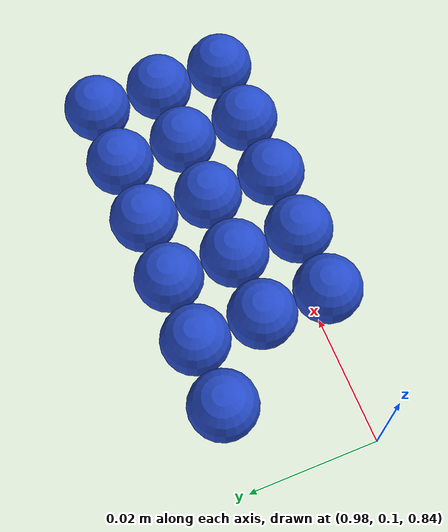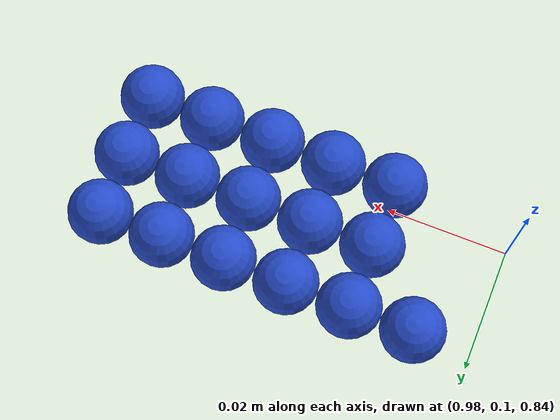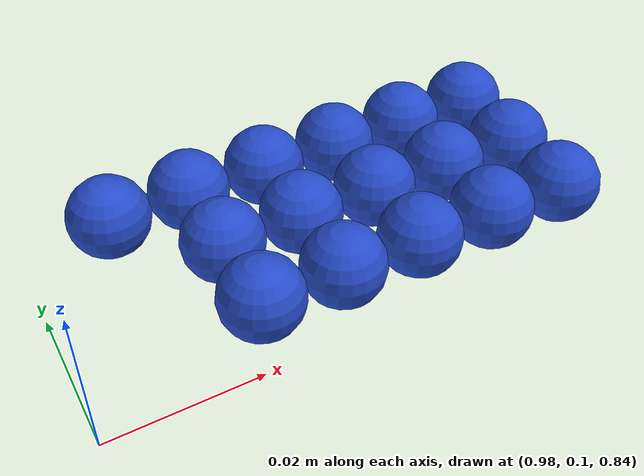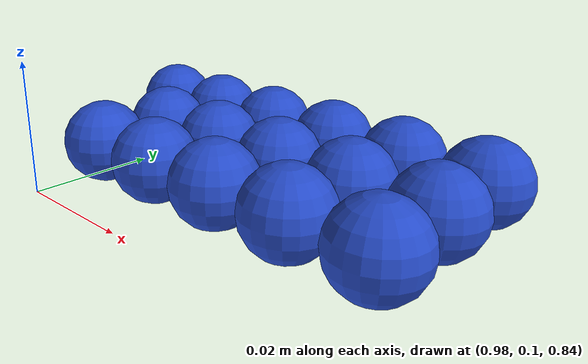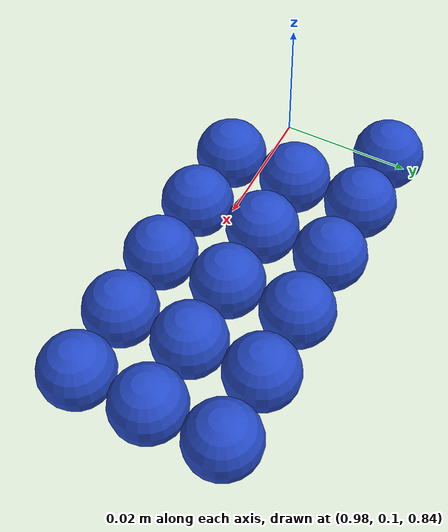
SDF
<sdf version="1.4">
 <world name="default">
  <include><uri>model://ground_plane</uri></include>
  <include><uri>model://sun</uri></include>
  <model name="ball_bearing_5">
   <link name="link">
    <pose>0 0 0.003 0 0 0</pose>
    <inertial>
     <mass>0.0011</mass>
     <inertia>
      <ixx>3.96e-09</ixx>
      <ixy>0</ixy>
      <ixz>0</ixz>
      <iyy>3.96e-09</iyy>
      <iyz>0</iyz>
      <izz>3.96e-09</izz>
     </inertia>
    </inertial>
    <collision name="collision">
     <geometry><sphere><radius>0.005</radius></sphere></geometry>
     <surface><contact><ode><max_vel>0.1</max_vel><min_depth>0.0001</min_depth></ode></contact></surface>
    </collision>
    <visual name="visual">
     <geometry><sphere><radius>0.005</radius></sphere></geometry>
     <material>
      <script><uri>file://media/materials/scripts/gazebo.material</uri><name>Gazebo/Blue</name></script>
     </material>
    </visual>
    <velocity_decay><linear>0</linear><angular>0.005</angular></velocity_decay>
   </link>
   <pose>1.0 0.1 0.85 0.0 0.0 0.0</pose>
  </model>
  <model name="ball_bearing_6">
   <link name="link">
    <pose>0 0 0.003 0 0 0</pose>
    <inertial>
     <mass>0.0011</mass>
     <inertia>
      <ixx>3.96e-09</ixx>
      <ixy>0</ixy>
      <ixz>0</ixz>
      <iyy>3.96e-09</iyy>
      <iyz>0</iyz>
      <izz>3.96e-09</izz>
     </inertia>
    </inertial>
    <collision name="collision">
     <geometry><sphere><radius>0.005</radius></sphere></geometry>
     <surface><contact><ode><max_vel>0.1</max_vel><min_depth>0.0001</min_depth></ode></contact></surface>
    </collision>
    <visual name="visual">
     <geometry><sphere><radius>0.005</radius></sphere></geometry>
     <material>
      <script><uri>file://media/materials/scripts/gazebo.material</uri><name>Gazebo/Blue</name></script>
     </material>
    </visual>
    <velocity_decay><linear>0</linear><angular>0.005</angular></velocity_decay>
   </link>
   <pose>1.01 0.1 0.85 0.0 0.0 0.0</pose>
  </model>
  <model name="ball_bearing_7">
   <link name="link">
    <pose>0 0 0.003 0 0 0</pose>
    <inertial>
     <mass>0.0011</mass>
     <inertia>
      <ixx>3.96e-09</ixx>
      <ixy>0</ixy>
      <ixz>0</ixz>
      <iyy>3.96e-09</iyy>
      <iyz>0</iyz>
      <izz>3.96e-09</izz>
     </inertia>
    </inertial>
    <collision name="collision">
     <geometry><sphere><radius>0.005</radius></sphere></geometry>
     <surface><contact><ode><max_vel>0.1</max_vel><min_depth>0.0001</min_depth></ode></contact></surface>
    </collision>
    <visual name="visual">
     <geometry><sphere><radius>0.005</radius></sphere></geometry>
     <material>
      <script><uri>file://media/materials/scripts/gazebo.material</uri><name>Gazebo/Blue</name></script>
     </material>
    </visual>
    <velocity_decay><linear>0</linear><angular>0.005</angular></velocity_decay>
   </link>
   <pose>1.02 0.1 0.85 0.0 0.0 0.0</pose>
  </model>
  <model name="ball_bearing_8">
   <link name="link">
    <pose>0 0 0.003 0 0 0</pose>
    <inertial>
     <mass>0.0011</mass>
     <inertia>
      <ixx>3.96e-09</ixx>
      <ixy>0</ixy>
      <ixz>0</ixz>
      <iyy>3.96e-09</iyy>
      <iyz>0</iyz>
      <izz>3.96e-09</izz>
     </inertia>
    </inertial>
    <collision name="collision">
     <geometry><sphere><radius>0.005</radius></sphere></geometry>
     <surface><contact><ode><max_vel>0.1</max_vel><min_depth>0.0001</min_depth></ode></contact></surface>
    </collision>
    <visual name="visual">
     <geometry><sphere><radius>0.005</radius></sphere></geometry>
     <material>
      <script><uri>file://media/materials/scripts/gazebo.material</uri><name>Gazebo/Blue</name></script>
     </material>
    </visual>
    <velocity_decay><linear>0</linear><angular>0.005</angular></velocity_decay>
   </link>
   <pose>1.03 0.1 0.85 0.0 0.0 0.0</pose>
  </model>
  <model name="ball_bearing_9">
   <link name="link">
    <pose>0 0 0.003 0 0 0</pose>
    <inertial>
     <mass>0.0011</mass>
     <inertia>
      <ixx>3.96e-09</ixx>
      <ixy>0</ixy>
      <ixz>0</ixz>
      <iyy>3.96e-09</iyy>
      <iyz>0</iyz>
      <izz>3.96e-09</izz>
     </inertia>
    </inertial>
    <collision name="collision">
     <geometry><sphere><radius>0.005</radius></sphere></geometry>
     <surface><contact><ode><max_vel>0.1</max_vel><min_depth>0.0001</min_depth></ode></contact></surface>
    </collision>
    <visual name="visual">
     <geometry><sphere><radius>0.005</radius></sphere></geometry>
     <material>
      <script><uri>file://media/materials/scripts/gazebo.material</uri><name>Gazebo/Blue</name></script>
     </material>
    </visual>
    <velocity_decay><linear>0</linear><angular>0.005</angular></velocity_decay>
   </link>
   <pose>1.04 0.1 0.85 0.0 0.0 0.0</pose>
  </model>
  <model name="ball_bearing_15">
   <link name="link">
    <pose>0 0 0.003 0 0 0</pose>
    <inertial>
     <mass>0.0011</mass>
     <inertia>
      <ixx>3.96e-09</ixx>
      <ixy>0</ixy>
      <ixz>0</ixz>
      <iyy>3.96e-09</iyy>
      <iyz>0</iyz>
      <izz>3.96e-09</izz>
     </inertia>
    </inertial>
    <collision name="collision">
     <geometry><sphere><radius>0.005</radius></sphere></geometry>
     <surface><contact><ode><max_vel>0.1</max_vel><min_depth>0.0001</min_depth></ode></contact></surface>
    </collision>
    <visual name="visual">
     <geometry><sphere><radius>0.005</radius></sphere></geometry>
     <material>
      <script><uri>file://media/materials/scripts/gazebo.material</uri><name>Gazebo/Blue</name></script>
     </material>
    </visual>
    <velocity_decay><linear>0</linear><angular>0.005</angular></velocity_decay>
   </link>
   <pose>1.0 0.11 0.85 0.0 0.0 0.0</pose>
  </model>
  <model name="ball_bearing_16">
   <link name="link">
    <pose>0 0 0.003 0 0 0</pose>
    <inertial>
     <mass>0.0011</mass>
     <inertia>
      <ixx>3.96e-09</ixx>
      <ixy>0</ixy>
      <ixz>0</ixz>
      <iyy>3.96e-09</iyy>
      <iyz>0</iyz>
      <izz>3.96e-09</izz>
     </inertia>
    </inertial>
    <collision name="collision">
     <geometry><sphere><radius>0.005</radius></sphere></geometry>
     <surface><contact><ode><max_vel>0.1</max_vel><min_depth>0.0001</min_depth></ode></contact></surface>
    </collision>
    <visual name="visual">
     <geometry><sphere><radius>0.005</radius></sphere></geometry>
     <material>
      <script><uri>file://media/materials/scripts/gazebo.material</uri><name>Gazebo/Blue</name></script>
     </material>
    </visual>
    <velocity_decay><linear>0</linear><angular>0.005</angular></velocity_decay>
   </link>
   <pose>1.01 0.11 0.85 0.0 0.0 0.0</pose>
  </model>
  <model name="ball_bearing_17">
   <link name="link">
    <pose>0 0 0.003 0 0 0</pose>
    <inertial>
     <mass>0.0011</mass>
     <inertia>
      <ixx>3.96e-09</ixx>
      <ixy>0</ixy>
      <ixz>0</ixz>
      <iyy>3.96e-09</iyy>
      <iyz>0</iyz>
      <izz>3.96e-09</izz>
     </inertia>
    </inertial>
    <collision name="collision">
     <geometry><sphere><radius>0.005</radius></sphere></geometry>
     <surface><contact><ode><max_vel>0.1</max_vel><min_depth>0.0001</min_depth></ode></contact></surface>
    </collision>
    <visual name="visual">
     <geometry><sphere><radius>0.005</radius></sphere></geometry>
     <material>
      <script><uri>file://media/materials/scripts/gazebo.material</uri><name>Gazebo/Blue</name></script>
     </material>
    </visual>
    <velocity_decay><linear>0</linear><angular>0.005</angular></velocity_decay>
   </link>
   <pose>1.02 0.11 0.85 0.0 0.0 0.0</pose>
  </model>
  <model name="ball_bearing_18">
   <link name="link">
    <pose>0 0 0.003 0 0 0</pose>
    <inertial>
     <mass>0.0011</mass>
     <inertia>
      <ixx>3.96e-09</ixx>
      <ixy>0</ixy>
      <ixz>0</ixz>
      <iyy>3.96e-09</iyy>
      <iyz>0</iyz>
      <izz>3.96e-09</izz>
     </inertia>
    </inertial>
    <collision name="collision">
     <geometry><sphere><radius>0.005</radius></sphere></geometry>
     <surface><contact><ode><max_vel>0.1</max_vel><min_depth>0.0001</min_depth></ode></contact></surface>
    </collision>
    <visual name="visual">
     <geometry><sphere><radius>0.005</radius></sphere></geometry>
     <material>
      <script><uri>file://media/materials/scripts/gazebo.material</uri><name>Gazebo/Blue</name></script>
     </material>
    </visual>
    <velocity_decay><linear>0</linear><angular>0.005</angular></velocity_decay>
   </link>
   <pose>1.03 0.11 0.85 0.0 0.0 0.0</pose>
  </model>
  <model name="ball_bearing_19">
   <link name="link">
    <pose>0 0 0.003 0 0 0</pose>
    <inertial>
     <mass>0.0011</mass>
     <inertia>
      <ixx>3.96e-09</ixx>
      <ixy>0</ixy>
      <ixz>0</ixz>
      <iyy>3.96e-09</iyy>
      <iyz>0</iyz>
      <izz>3.96e-09</izz>
     </inertia>
    </inertial>
    <collision name="collision">
     <geometry><sphere><radius>0.005</radius></sphere></geometry>
     <surface><contact><ode><max_vel>0.1</max_vel><min_depth>0.0001</min_depth></ode></contact></surface>
    </collision>
    <visual name="visual">
     <geometry><sphere><radius>0.005</radius></sphere></geometry>
     <material>
      <script><uri>file://media/materials/scripts/gazebo.material</uri><name>Gazebo/Blue</name></script>
     </material>
    </visual>
    <velocity_decay><linear>0</linear><angular>0.005</angular></velocity_decay>
   </link>
   <pose>1.04 0.11 0.85 0.0 0.0 0.0</pose>
  </model>
  <model name="ball_bearing_24">
   <link name="link">
    <pose>0 0 0.003 0 0 0</pose>
    <inertial>
     <mass>0.0011</mass>
     <inertia>
      <ixx>3.96e-09</ixx>
      <ixy>0</ixy>
      <ixz>0</ixz>
      <iyy>3.96e-09</iyy>
      <iyz>0</iyz>
      <izz>3.96e-09</izz>
     </inertia>
    </inertial>
    <collision name="collision">
     <geometry><sphere><radius>0.005</radius></sphere></geometry>
     <surface><contact><ode><max_vel>0.1</max_vel><min_depth>0.0001</min_depth></ode></contact></surface>
    </collision>
    <visual name="visual">
     <geometry><sphere><radius>0.005</radius></sphere></geometry>
     <material>
      <script><uri>file://media/materials/scripts/gazebo.material</uri><name>Gazebo/Blue</name></script>
     </material>
    </visual>
    <velocity_decay><linear>0</linear><angular>0.005</angular></velocity_decay>
   </link>
   <pose>0.99 0.12 0.85 0.0 0.0 0.0</pose>
  </model>
  <model name="ball_bearing_25">
   <link name="link">
    <pose>0 0 0.003 0 0 0</pose>
    <inertial>
     <mass>0.0011</mass>
     <inertia>
      <ixx>3.96e-09</ixx>
      <ixy>0</ixy>
      <ixz>0</ixz>
      <iyy>3.96e-09</iyy>
      <iyz>0</iyz>
      <izz>3.96e-09</izz>
     </inertia>
    </inertial>
    <collision name="collision">
     <geometry><sphere><radius>0.005</radius></sphere></geometry>
     <surface><contact><ode><max_vel>0.1</max_vel><min_depth>0.0001</min_depth></ode></contact></surface>
    </collision>
    <visual name="visual">
     <geometry><sphere><radius>0.005</radius></sphere></geometry>
     <material>
      <script><uri>file://media/materials/scripts/gazebo.material</uri><name>Gazebo/Blue</name></script>
     </material>
    </visual>
    <velocity_decay><linear>0</linear><angular>0.005</angular></velocity_decay>
   </link>
   <pose>1.0 0.12 0.85 0.0 0.0 0.0</pose>
  </model>
  <model name="ball_bearing_26">
   <link name="link">
    <pose>0 0 0.003 0 0 0</pose>
    <inertial>
     <mass>0.0011</mass>
     <inertia>
      <ixx>3.96e-09</ixx>
      <ixy>0</ixy>
      <ixz>0</ixz>
      <iyy>3.96e-09</iyy>
      <iyz>0</iyz>
      <izz>3.96e-09</izz>
     </inertia>
    </inertial>
    <collision name="collision">
     <geometry><sphere><radius>0.005</radius></sphere></geometry>
     <surface><contact><ode><max_vel>0.1</max_vel><min_depth>0.0001</min_depth></ode></contact></surface>
    </collision>
    <visual name="visual">
     <geometry><sphere><radius>0.005</radius></sphere></geometry>
     <material>
      <script><uri>file://media/materials/scripts/gazebo.material</uri><name>Gazebo/Blue</name></script>
     </material>
    </visual>
    <velocity_decay><linear>0</linear><angular>0.005</angular></velocity_decay>
   </link>
   <pose>1.01 0.12 0.85 0.0 0.0 0.0</pose>
  </model>
  <model name="ball_bearing_27">
   <link name="link">
    <pose>0 0 0.003 0 0 0</pose>
    <inertial>
     <mass>0.0011</mass>
     <inertia>
      <ixx>3.96e-09</ixx>
      <ixy>0</ixy>
      <ixz>0</ixz>
      <iyy>3.96e-09</iyy>
      <iyz>0</iyz>
      <izz>3.96e-09</izz>
     </inertia>
    </inertial>
    <collision name="collision">
     <geometry><sphere><radius>0.005</radius></sphere></geometry>
     <surface><contact><ode><max_vel>0.1</max_vel><min_depth>0.0001</min_depth></ode></contact></surface>
    </collision>
    <visual name="visual">
     <geometry><sphere><radius>0.005</radius></sphere></geometry>
     <material>
      <script><uri>file://media/materials/scripts/gazebo.material</uri><name>Gazebo/Blue</name></script>
     </material>
    </visual>
    <velocity_decay><linear>0</linear><angular>0.005</angular></velocity_decay>
   </link>
   <pose>1.02 0.12 0.85 0.0 0.0 0.0</pose>
  </model>
  <model name="ball_bearing_28">
   <link name="link">
    <pose>0 0 0.003 0 0 0</pose>
    <inertial>
     <mass>0.0011</mass>
     <inertia>
      <ixx>3.96e-09</ixx>
      <ixy>0</ixy>
      <ixz>0</ixz>
      <iyy>3.96e-09</iyy>
      <iyz>0</iyz>
      <izz>3.96e-09</izz>
     </inertia>
    </inertial>
    <collision name="collision">
     <geometry><sphere><radius>0.005</radius></sphere></geometry>
     <surface><contact><ode><max_vel>0.1</max_vel><min_depth>0.0001</min_depth></ode></contact></surface>
    </collision>
    <visual name="visual">
     <geometry><sphere><radius>0.005</radius></sphere></geometry>
     <material>
      <script><uri>file://media/materials/scripts/gazebo.material</uri><name>Gazebo/Blue</name></script>
     </material>
    </visual>
    <velocity_decay><linear>0</linear><angular>0.005</angular></velocity_decay>
   </link>
   <pose>1.03 0.12 0.85 0.0 0.0 0.0</pose>
  </model>
  <model name="ball_bearing_29">
   <link name="link">
    <pose>0 0 0.003 0 0 0</pose>
    <inertial>
     <mass>0.0011</mass>
     <inertia>
      <ixx>3.96e-09</ixx>
      <ixy>0</ixy>
      <ixz>0</ixz>
      <iyy>3.96e-09</iyy>
      <iyz>0</iyz>
      <izz>3.96e-09</izz>
     </inertia>
    </inertial>
    <collision name="collision">
     <geometry><sphere><radius>0.005</radius></sphere></geometry>
     <surface><contact><ode><max_vel>0.1</max_vel><min_depth>0.0001</min_depth></ode></contact></surface>
    </collision>
    <visual name="visual">
     <geometry><sphere><radius>0.005</radius></sphere></geometry>
     <material>
      <script><uri>file://media/materials/scripts/gazebo.material</uri><name>Gazebo/Blue</name></script>
     </material>
    </visual>
    <velocity_decay><linear>0</linear><angular>0.005</angular></velocity_decay>
   </link>
   <pose>1.04 0.12 0.85 0.0 0.0 0.0</pose>
  </model>
 </world>
</sdf>
